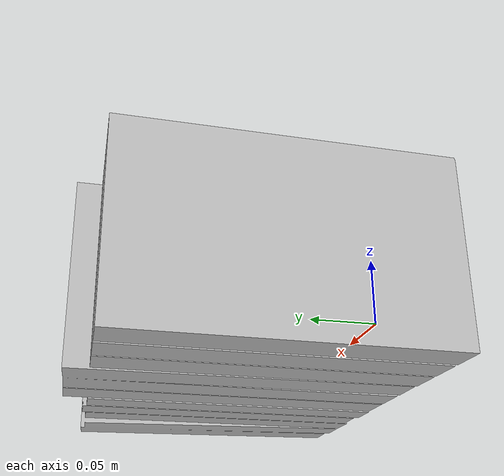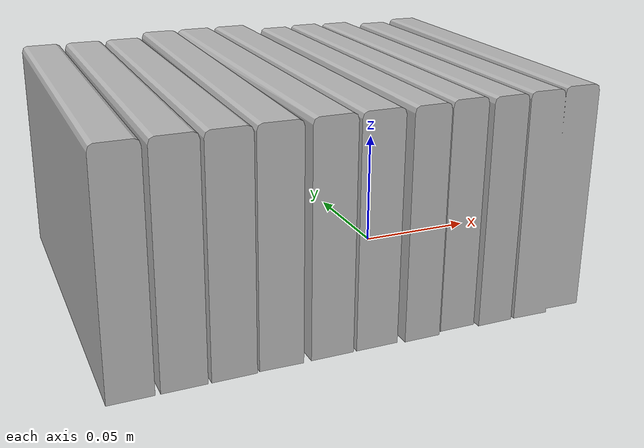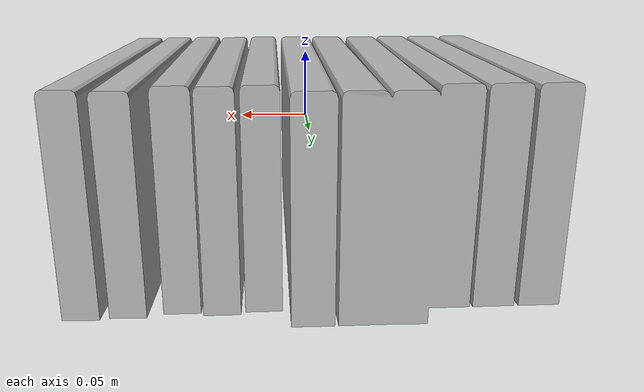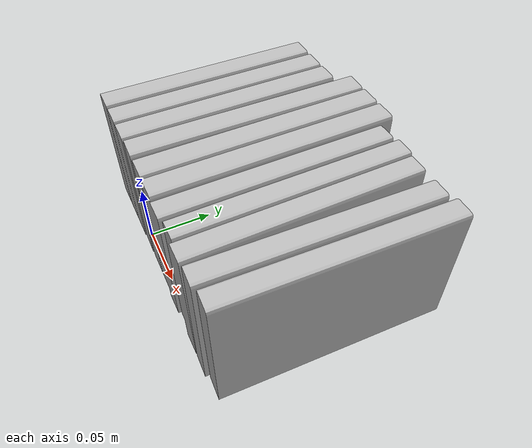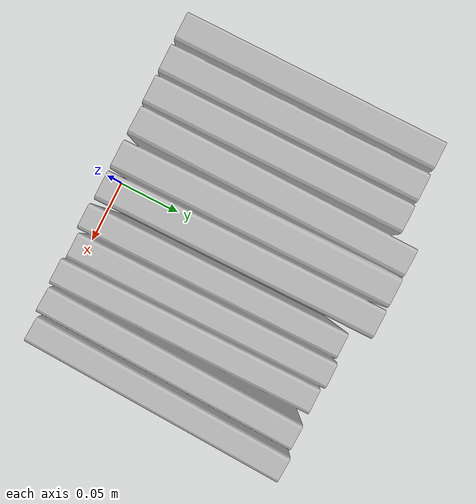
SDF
<?xml version="1.0" ?>
<sdf version="1.4">
  <model name="shelf2_book2_v2">
    <link name="body">
      <pose>0 0 0 0 0 0</pose>
      <inertial>
        <pose>   0.004400   0.103141   0.000305 0 0 0</pose>
        <mass>0.5</mass>
        <inertia>
          <ixx>0.01</ixx>
          <ixy>0</ixy>
          <ixz>0</ixz>
          <iyy>0.01</iyy>
          <iyz>0</iyz>
          <izz>0.01</izz>
        </inertia>
      </inertial>
      <collision name="collision">
        <geometry>
          <mesh>
            <uri>model://bookshelf/shelf2_items/book2_v2/book2_v2.dae</uri>
          </mesh>
        </geometry>
      </collision>
      <visual name="visual">
        <geometry>
          <mesh>
            <uri>model://bookshelf/shelf2_items/book2_v2/book2_v2.dae</uri>
          </mesh>
        </geometry>
      </visual>
    </link>
  </model>
</sdf>
